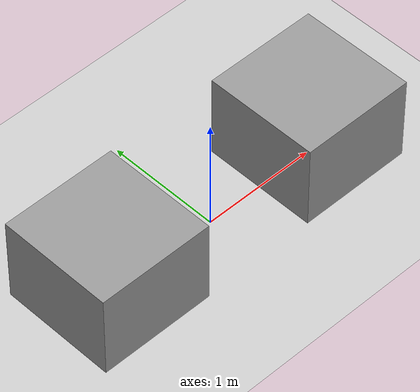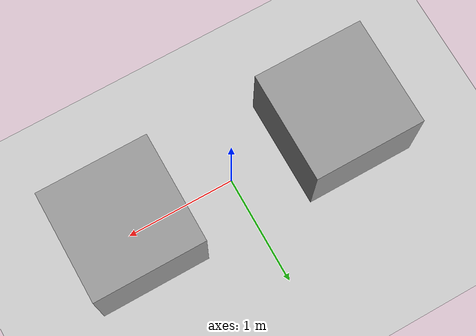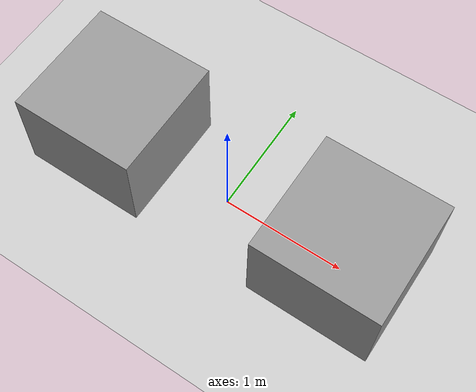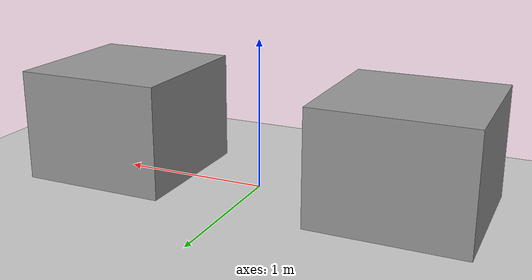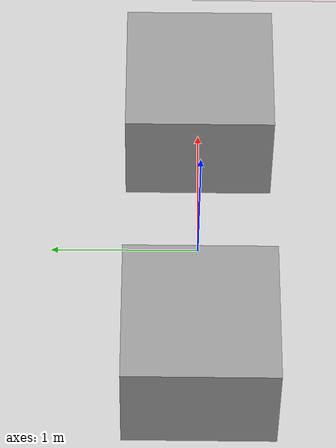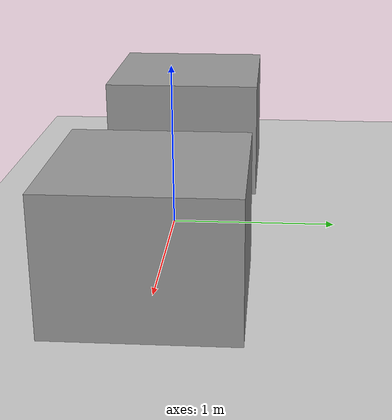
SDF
<?xml version="1.0" ?>
<sdf version="1.4">
    <world name="default">
      <!-- 0.0015 for 'realish' time but more jitter -->
    <include>
      <uri>model://ground_plane</uri>
    </include>
    <include>
      <uri>model://sun</uri>
    </include>
    <model name='stand_1'>
      <pose>1 0 0.375 0 -0 0</pose>
      <static>True</static>
      <link name='link'>
        <inertial>
          <mass>100000000000</mass>
          <inertia>
            <ixx>1</ixx>
            <ixy>0</ixy>
            <ixz>0</ixz>
            <iyy>1</iyy>
            <iyz>0</iyz>
            <izz>1</izz>
          </inertia>
        </inertial>
        <collision name='collision'>
          <geometry>
            <box>
              <size>1 1 0.75</size>
            </box>
          </geometry>
          <max_contacts>100</max_contacts>
          <surface>
            <bounce/>
            <friction>
              <ode/>
            </friction>
            <contact>
              <ode/>
            </contact>
          </surface>
        </collision>
        <visual name='visual'>
          <geometry>
            <box>
              <size>1 1 0.75</size>
            </box>
          </geometry>
          <material>
            <script>
              <uri>file://media/materials/scripts/gazebo.material</uri>
              <name>Gazebo/Grey</name>
            </script>
          </material>
        </visual>
        <velocity_decay>
          <linear>0</linear>
          <angular>0</angular>
        </velocity_decay>
        <self_collide>0</self_collide>
        <kinematic>0</kinematic>
        <gravity>1</gravity>
      </link>
    </model>
    <model name='stand_2'>
      <static>True</static>
      <pose>-1 0 0.375 0 -0 0</pose>
      <link name='link'>
        <inertial>
          <mass>100000000000</mass>
          <inertia>
            <ixx>1</ixx>
            <ixy>0</ixy>
            <ixz>0</ixz>
            <iyy>1</iyy>
            <iyz>0</iyz>
            <izz>1</izz>
          </inertia>
        </inertial>
        <collision name='collision'>
          <geometry>
            <box>
              <size>1 1 0.75</size>
            </box>
          </geometry>
          <max_contacts>100</max_contacts>
          <surface>
            <bounce/>
            <friction>
              <ode/>
            </friction>
            <contact>
              <ode/>
            </contact>
          </surface>
        </collision>
        <visual name='visual'>
          <geometry>
            <box>
              <size>1 1 0.75</size>
            </box>
          </geometry>
          <material>
            <script>
              <uri>file://media/materials/scripts/gazebo.material</uri>
              <name>Gazebo/Grey</name>
            </script>
          </material>
        </visual>
        <velocity_decay>
          <linear>0</linear>
          <angular>0</angular>
        </velocity_decay>
        <self_collide>0</self_collide>
        <kinematic>0</kinematic>
        <gravity>1</gravity>
      </link>
    </model>
</world>
</sdf>
